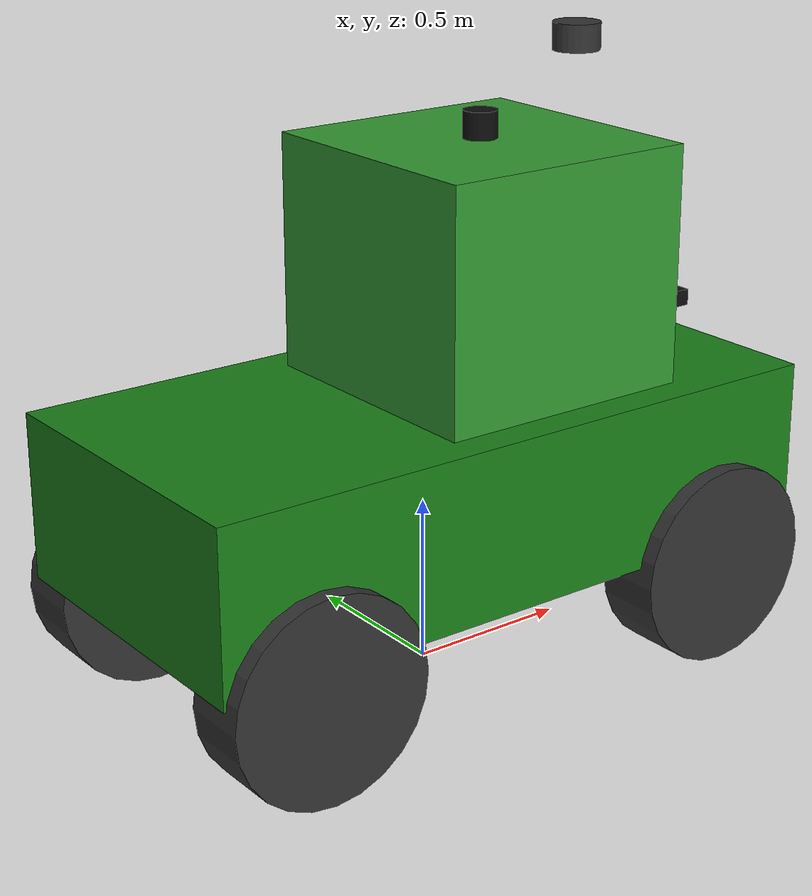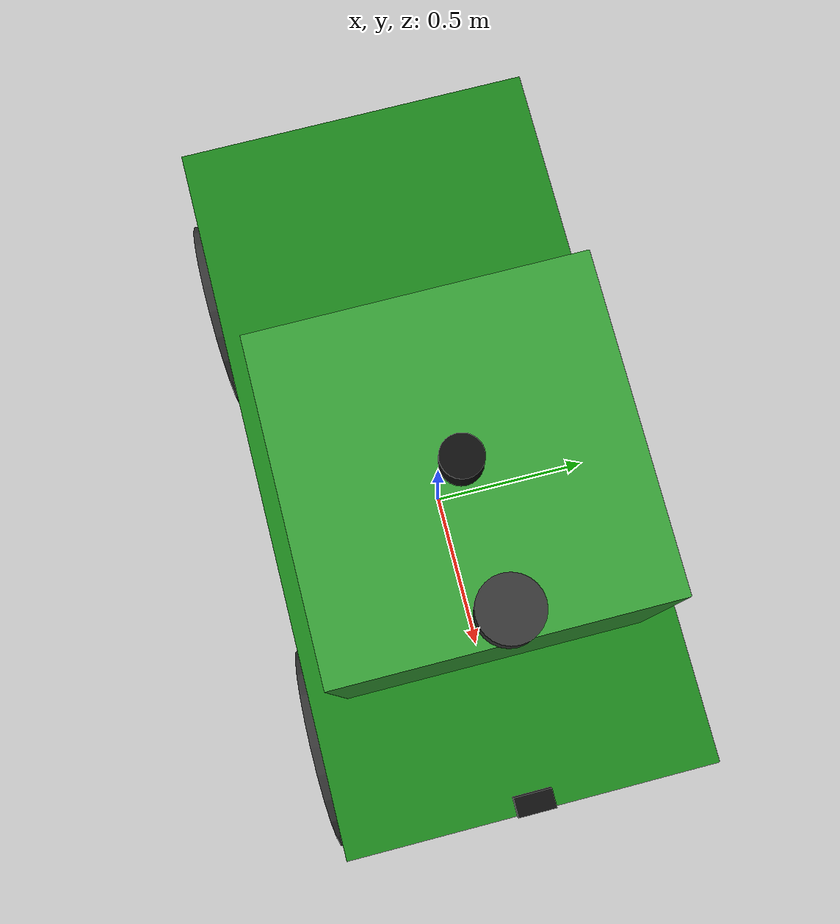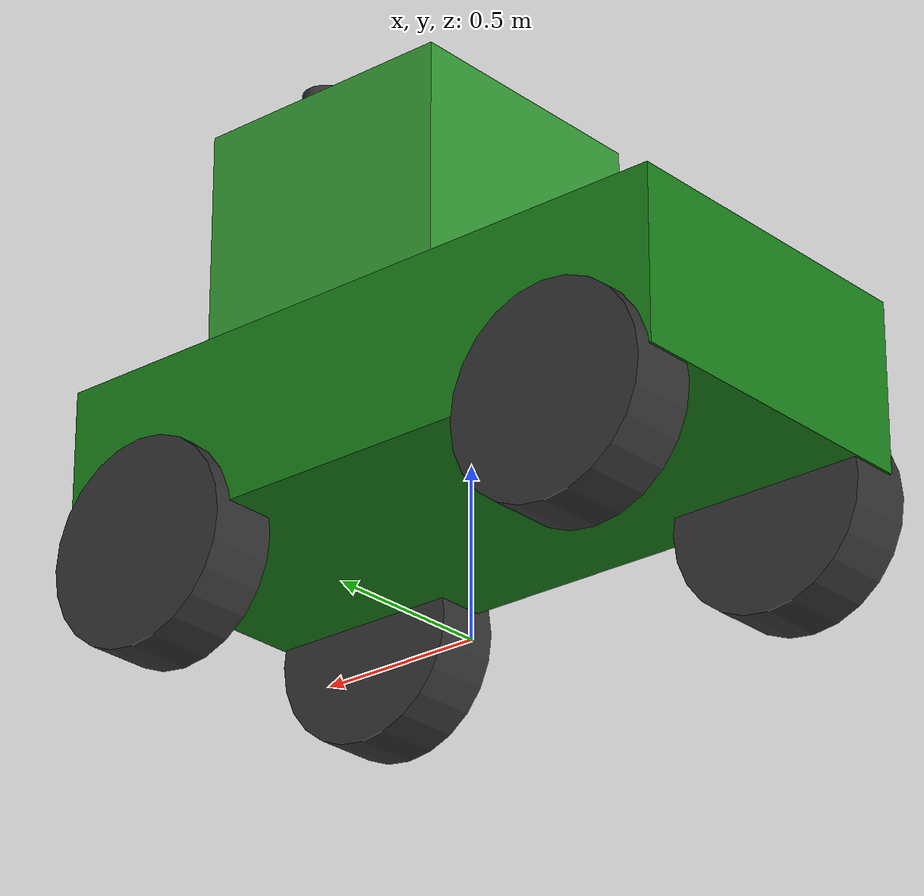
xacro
<?xml version="1.0"?>
<!--
  Модель беспилотного сельскохозяйственного трактора (AGV)
  Геометрия упрощена для работы в условиях ограниченных ресурсов VM.
  Размеры приблизительно соответствуют малому трактору типа МТЗ-320.
-->
<robot name="agv_tractor" xmlns:xacro="http://www.ros.org/wiki/xacro">

  <!-- ============================================================
       КОНСТАНТЫ И ПАРАМЕТРЫ
       ============================================================ -->

  <!-- Размеры основного корпуса -->
  <xacro:property name="chassis_length" value="2.0"/>   <!-- м, длина -->
  <xacro:property name="chassis_width"  value="1.0"/>   <!-- м, ширина -->
  <xacro:property name="chassis_height" value="0.5"/>   <!-- м, высота -->
  <xacro:property name="chassis_mass"   value="800.0"/> <!-- кг -->

  <!-- Параметры колёс -->
  <xacro:property name="wheel_radius"   value="0.3"/>   <!-- м, радиус колеса -->
  <xacro:property name="wheel_width"    value="0.2"/>   <!-- м, ширина колеса -->
  <xacro:property name="wheel_mass"     value="30.0"/>  <!-- кг -->

  <!-- Колёсная база и колея -->
  <xacro:property name="wheelbase"      value="1.4"/>   <!-- м, продольная база -->
  <xacro:property name="track_width"    value="0.9"/>   <!-- м, поперечная колея (полуширина) -->

  <!-- Высота центра масс шасси над землёй -->
  <xacro:property name="ground_clearance" value="0.35"/>

  <!-- ============================================================
       МАКРОС: момент инерции цилиндра (для колёс)
       ============================================================ -->
  <xacro:macro name="cylinder_inertia" params="m r h">
    <inertial>
      <mass value="${m}"/>
      <inertia
        ixx="${m*(3*r*r + h*h)/12}"
        ixy="0" ixz="0"
        iyy="${m*(3*r*r + h*h)/12}"
        iyz="0"
        izz="${m*r*r/2}"/>
    </inertial>
  </xacro:macro>

  <!-- ============================================================
       МАКРОС: момент инерции параллелепипеда (для корпуса)
       ============================================================ -->
  <xacro:macro name="box_inertia" params="m x y z">
    <inertial>
      <mass value="${m}"/>
      <inertia
        ixx="${m*(y*y + z*z)/12}"
        ixy="0" ixz="0"
        iyy="${m*(x*x + z*z)/12}"
        iyz="0"
        izz="${m*(x*x + y*y)/12}"/>
    </inertial>
  </xacro:macro>

  <xacro:macro name="wheel" params="prefix x_pos y_pos">

    <!-- Link колеса -->
    <link name="${prefix}_wheel_link">
      <visual>
        <geometry>
          <cylinder radius="${wheel_radius}" length="${wheel_width}"/>
        </geometry>
        <material name="dark_grey">
          <color rgba="0.2 0.2 0.2 1.0"/>
        </material>
      </visual>
      <collision>
        <geometry>
          <cylinder radius="${wheel_radius}" length="${wheel_width}"/>
        </geometry>
      </collision>
      <xacro:cylinder_inertia m="${wheel_mass}" r="${wheel_radius}" h="${wheel_width}"/>
    </link>

    <!-- Joint: шасси → колесо (вращение вокруг оси Y, т.к. колесо лежит по Z) -->
    <joint name="${prefix}_wheel_joint" type="continuous">
      <parent link="chassis_link"/>
      <child  link="${prefix}_wheel_link"/>
      <!-- Колесо смещено по X (перед/зад), Y (лево/право), Z — до земли -->
      <origin xyz="${x_pos} ${y_pos} ${-ground_clearance + wheel_radius - chassis_height/2}"
              rpy="${pi/2} 0 0"/>
      <axis xyz="0 0 -1"/>
      <!-- Трение и демпфирование для стабильной физики -->
      <dynamics damping="0.1" friction="1.0"/>
      <limit effort="500" velocity="10.0"/>
    </joint>

  </xacro:macro>

  <!-- ============================================================
       БАЗОВЫЙ LINK (необходим по стандарту ROS)
       ============================================================ -->
  <link name="base_link"/>

  <!-- Joint: base_link → chassis_link (центр корпуса над землёй) -->
  <joint name="base_to_chassis" type="fixed">
    <parent link="base_link"/>
    <child  link="chassis_link"/>
    <origin xyz="0 0 ${ground_clearance + chassis_height/2}" rpy="0 0 0"/>
  </joint>

  <!-- ============================================================
       КОРПУС ТРАКТОРА
       ============================================================ -->
  <link name="chassis_link">
    <visual>
      <geometry>
        <box size="${chassis_length} ${chassis_width} ${chassis_height}"/>
      </geometry>
      <material name="green">
        <color rgba="0.1 0.5 0.1 1.0"/>
      </material>
    </visual>
    <collision>
      <geometry>
        <box size="${chassis_length} ${chassis_width} ${chassis_height}"/>
      </geometry>
    </collision>
    <xacro:box_inertia m="${chassis_mass}"
                       x="${chassis_length}"
                       y="${chassis_width}"
                       z="${chassis_height}"/>
  </link>

  <xacro:wheel prefix="front_left"
               x_pos="${wheelbase/2}"
               y_pos="${track_width/2}"/>

  <xacro:wheel prefix="front_right"
               x_pos="${wheelbase/2}"
               y_pos="${-track_width/2}"/>

  <xacro:wheel prefix="rear_left"
               x_pos="${-wheelbase/2}"
               y_pos="${track_width/2}"/>

  <xacro:wheel prefix="rear_right"
               x_pos="${-wheelbase/2}"
               y_pos="${-track_width/2}"/>

  <!-- ============================================================
       КАБИНА (упрощённая, над корпусом)
       ============================================================ -->
  <link name="cabin_link">
    <visual>
      <geometry>
        <box size="0.8 0.8 0.7"/>
      </geometry>
      <material name="light_green">
        <color rgba="0.2 0.6 0.2 1.0"/>
      </material>
    </visual>
    <collision>
      <geometry>
        <box size="0.8 0.8 0.7"/>
      </geometry>
    </collision>
    <inertial>
      <mass value="80.0"/>
      <inertia ixx="5.0" ixy="0" ixz="0"
               iyy="5.0" iyz="0" izz="5.0"/>
    </inertial>
  </link>

  <joint name="chassis_to_cabin" type="fixed">
    <parent link="chassis_link"/>
    <child  link="cabin_link"/>
    <!-- Кабина сдвинута немного вперёд и вверх от корпуса -->
    <origin xyz="0.2 0 ${chassis_height/2 + 0.35}" rpy="0 0 0"/>
  </joint>

  <!-- ============================================================
       ТОЧКИ КРЕПЛЕНИЯ СЕНСОРОВ
       ============================================================ -->

  <!-- == GPS антенна (на крыше кабины, по центру) == -->
  <link name="gps_link">
    <visual>
      <geometry>
        <cylinder radius="0.05" length="0.08"/>
      </geometry>
      <material name="black">
        <color rgba="0.05 0.05 0.05 1.0"/>
      </material>
    </visual>
    <collision>
      <geometry>
        <cylinder radius="0.05" length="0.08"/>
      </geometry>
    </collision>
    <inertial>
      <mass value="0.2"/>
      <inertia ixx="0.001" ixy="0" ixz="0"
               iyy="0.001" iyz="0" izz="0.001"/>
    </inertial>
  </link>

  <joint name="cabin_to_gps" type="fixed">
    <parent link="cabin_link"/>
    <child  link="gps_link"/>
    <!-- По центру крыши кабины -->
    <origin xyz="0 0 0.39" rpy="0 0 0"/>
  </joint>

  <!-- == IMU (внутри корпуса, близко к центру масс) == -->
  <link name="imu_link">
    <visual>
      <geometry>
        <box size="0.06 0.06 0.02"/>
      </geometry>
      <material name="blue">
        <color rgba="0.0 0.0 0.8 1.0"/>
      </material>
    </visual>
    <collision>
      <geometry>
        <box size="0.06 0.06 0.02"/>
      </geometry>
    </collision>
    <inertial>
      <mass value="0.05"/>
      <inertia ixx="0.0001" ixy="0" ixz="0"
               iyy="0.0001" iyz="0" izz="0.0001"/>
    </inertial>
  </link>

  <joint name="chassis_to_imu" type="fixed">
    <parent link="chassis_link"/>
    <child  link="imu_link"/>
    <!-- В центре корпуса, слегка приподнят -->
    <origin xyz="0 0 ${chassis_height/2 - 0.05}" rpy="0 0 0"/>
  </joint>

  <!-- == 2D Лидар (на передней части крыши, по центру) == -->
  <link name="lidar_link">
    <visual>
      <geometry>
        <cylinder radius="0.07" length="0.08"/>
      </geometry>
      <material name="dark_grey"/>
    </visual>
    <collision>
      <geometry>
        <cylinder radius="0.07" length="0.08"/>
      </geometry>
    </collision>
    <inertial>
      <mass value="0.3"/>
      <inertia ixx="0.001" ixy="0" ixz="0"
               iyy="0.001" iyz="0" izz="0.001"/>
    </inertial>
  </link>

  <joint name="cabin_to_lidar" type="fixed">
    <parent link="cabin_link"/>
    <child  link="lidar_link"/>
    <origin xyz="0.35 0 0.6" rpy="0 0 0"/>
  </joint>

  <!-- == RGB Камера (спереди корпуса, ориентирована вперёд) == -->
  <link name="camera_link">
    <visual>
      <geometry>
        <box size="0.05 0.10 0.05"/>
      </geometry>
      <material name="black"/>
    </visual>
    <collision>
      <geometry>
        <box size="0.05 0.10 0.05"/>
      </geometry>
    </collision>
    <inertial>
      <mass value="0.1"/>
      <inertia ixx="0.0001" ixy="0" ixz="0"
               iyy="0.0001" iyz="0" izz="0.0001"/>
    </inertial>
  </link>

  <!-- Оптический фрейм камеры (по конвенции ROS: Z вперёд, X вправо, Y вниз) -->
  <link name="camera_optical_link"/>

  <joint name="chassis_to_camera" type="fixed">
    <parent link="chassis_link"/>
    <child  link="camera_link"/>
    <!-- Спереди корпуса, на высоте ~0.3 м от верхней плоскости корпуса -->
    <origin xyz="${chassis_length/2 - 0.03} 0 ${chassis_height/2 + 0.1}" rpy="0 0 0"/>
  </joint>

  <!-- Поворот фрейма камеры в оптическую систему координат -->
  <joint name="camera_to_optical" type="fixed">
    <parent link="camera_link"/>
    <child  link="camera_optical_link"/>
    <origin xyz="0 0 0" rpy="${-pi/2} 0 ${-pi/2}"/>
  </joint>

</robot>
